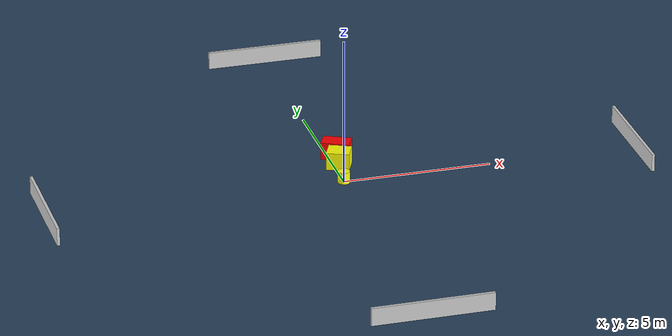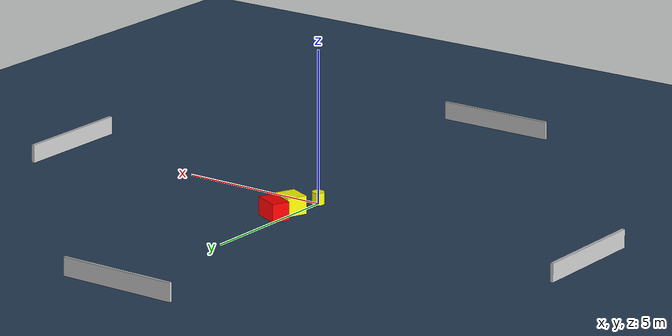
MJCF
<?xml version="1.0" ?>
<mujoco model="generated_environment">
  <option timestep="0.01" integrator="RK4" cone="elliptic"/>
  <default>
    <geom density="1"/>
  </default>
  <asset>
    <texture builtin="gradient" height="3072" name="skybox" rgb1="0.3 0.5 0.7" rgb2="0 0 0" type="skybox" width="512"/>
    <texture builtin="checker" height="300" name="groundplane" rgb1="0.2 0.3 0.4" rgb2="0.1 0.2 0.3" type="2d" width="300"/>
    <material name="groundplane" reflectance="0.2" texrepeat="5 5" texture="groundplane"/>
  </asset>
  <worldbody>
    <light dir="0 0 -1" directional="true" pos="0 0 1.5"/>
    <geom condim="3" friction="0.5 0.005 0.001" material="groundplane" name="floor" pos="0 0 0" size="0 0 0.05" type="plane"/>
    <body name="walls">
      <geom name="wall_1" condim="4" pos="-10.0 0.0 0.3" rgba="0.800000011920929 0.800000011920929 0.800000011920929 1.0" size="0.05 2.0 0.3" type="box"/>
      <geom name="wall_2" condim="4" pos="10.0 0.0 0.3" rgba="0.800000011920929 0.800000011920929 0.800000011920929 1.0" size="0.05 2.0 0.3" type="box"/>
      <geom name="wall_3" condim="4" pos="0.0 -10.0 0.3" rgba="0.800000011920929 0.800000011920929 0.800000011920929 1.0" size="2.0 0.05 0.3" type="box"/>
      <geom name="wall_4" condim="4" pos="0.0 10.0 0.3" rgba="0.800000011920929 0.800000011920929 0.800000011920929 1.0" size="2.0 0.05 0.3" type="box"/>
    </body>
    <body name="robot">
      <joint name="joint_x" type="slide" pos="0 0 0" axis="1 0 0"/>
      <joint name="joint_y" type="slide" pos="0 0 0" axis="0 1 0"/>
      <geom name="robot" type="cylinder" pos="0.0 0.0 0.2" size="0.2 0.2 0.0" mass="5.0" friction="1.0 0.005 0.0001" condim="4" rgba="1.0 1.0 0.0 1.0"/>
    </body>
    <body name="obstacle_1_movable">
      <geom name="obstacle_1_movable" condim="4" pos="0.17270647598687222 1.2032262328859076 0.3" euler="0 0 156.0664092844716" friction="0.0 0.005 0.001" rgba="1.0 1.0 0.0 1.0" size="0.38556228220916383 0.3364185613982241 0.3" type="box" mass="0.1"/>
      <joint type="free"/>
    </body>
    <body name="obstacle_2_static">
      <geom name="obstacle_2_static" condim="4" pos="0.28912524324200767 1.9234583851540927 0.3" euler="0 0 153.95342749498755" friction="0.0 0.005 0.001" rgba="1.0 0.0 0.0 1.0" size="0.4780509273979606 0.2873877951655589 0.3" type="box"/>
    </body>
  </worldbody>
  <actuator>
    <motor name="actuator_x" joint="joint_x" gear="1" ctrlrange="-1 1"/>
    <motor name="actuator_y" joint="joint_y" gear="1" ctrlrange="-1 1"/>
  </actuator>
</mujoco>
